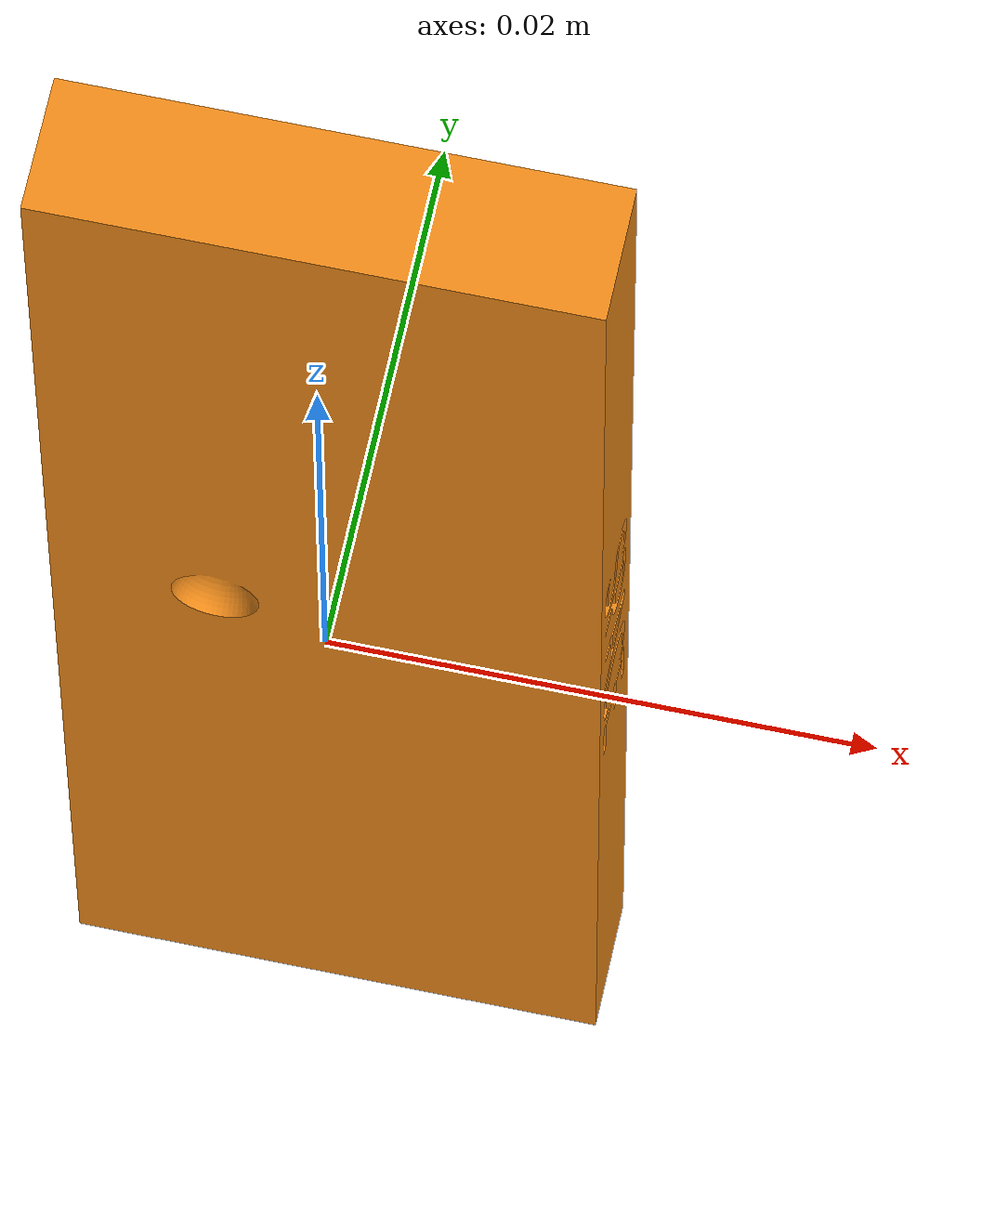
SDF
<?xml version="1.0"?>

<sdf version="1.5">
  <model name='Space'>
    <link name='Space_root_link'>
      <pose>0 0 0 0 0 0</pose>
      <inertial>
	<!-- CoM -->
	<pose>0.0 0.0 0.0</pose>
        <mass>0.2</mass>
        <inertia>
          <ixx>0.001354763904</ixx>
          <ixy>0.0</ixy>
          <ixz>0.0</ixz>
          <iyy>0.001354764032</iyy>
          <iyz>0.0</iyz>
          <izz>0.002700175872</izz>
        </inertia>
      </inertial>
      <collision name='Space_collision'>
        <geometry>
          <mesh><uri>model://br_Space/Space.stl</uri></mesh>
        </geometry>
	<surface>
          <friction>
            <ode>
              <mu>0.1</mu>
              <mu2>0.1</mu2>
            </ode>
          </friction>
	</surface>
      </collision>
      <visual name='Space_visual'>
        <geometry>
          <mesh><uri>model://br_Space/Space.dae</uri></mesh>
        </geometry>
        <material>
	  <script>
	    <uri>file://media/materials/scripts/gazebo.material</uri>
	    <name>Gazebo/Orange</name>
	  </script>
        </material>
      </visual>
    </link>
  </model>
</sdf>
